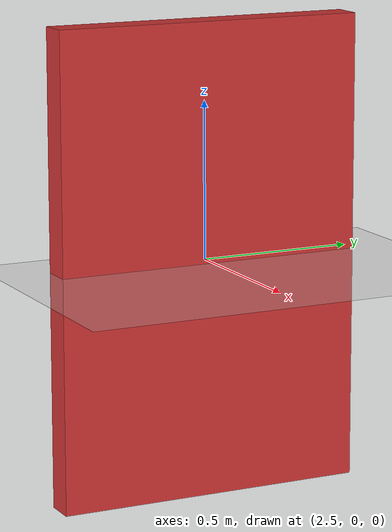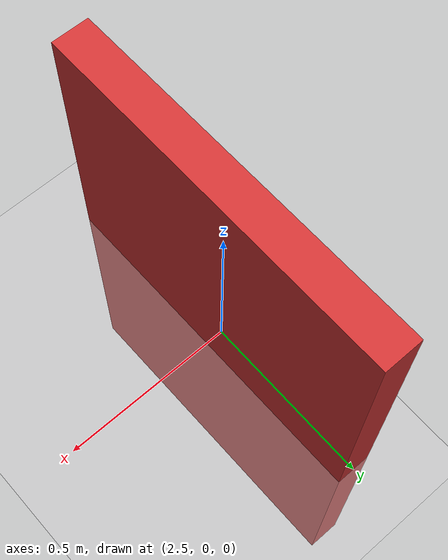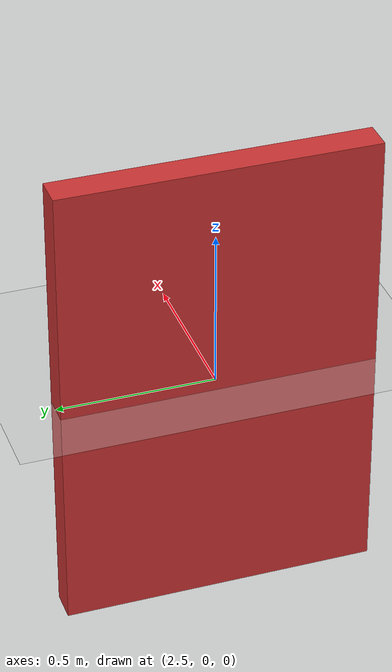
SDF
<?xml version="1.0" ?>
<sdf version="1.6">
  <world name="default">

    <!-- 插入地面 -->
    <include>
      <uri>model://ground_plane</uri>
    </include>

    <!-- 插入光源 -->
    <include>
      <uri>model://sun</uri>
    </include>

    <!-- 定义墙体模型 -->
    <model name="wall">
      <static>true</static>
      <pose>2.5 0 0 0 0 0</pose> <!-- 设置位置：x=3, y=0, z=0.5 -->

      <link name="wall_link">
        <collision name="collision">
          <geometry>
            <box>
              <size>0.1 1 1.5</size> <!-- 墙体尺寸：厚度0.1米，y轴方向5米，高度1米 -->
            </box>
          </geometry>
        </collision>

        <visual name="visual">
          <geometry>
            <box>
              <size>0.1 1 1.5</size> <!-- 墙体尺寸与collision保持一致 -->
            </box>
          </geometry>
          <material>
            <ambient>0.8 0.2 0.2 1</ambient> <!-- 墙的颜色 -->
          </material>
        </visual>
      </link>
    </model>

  </world>
</sdf>
